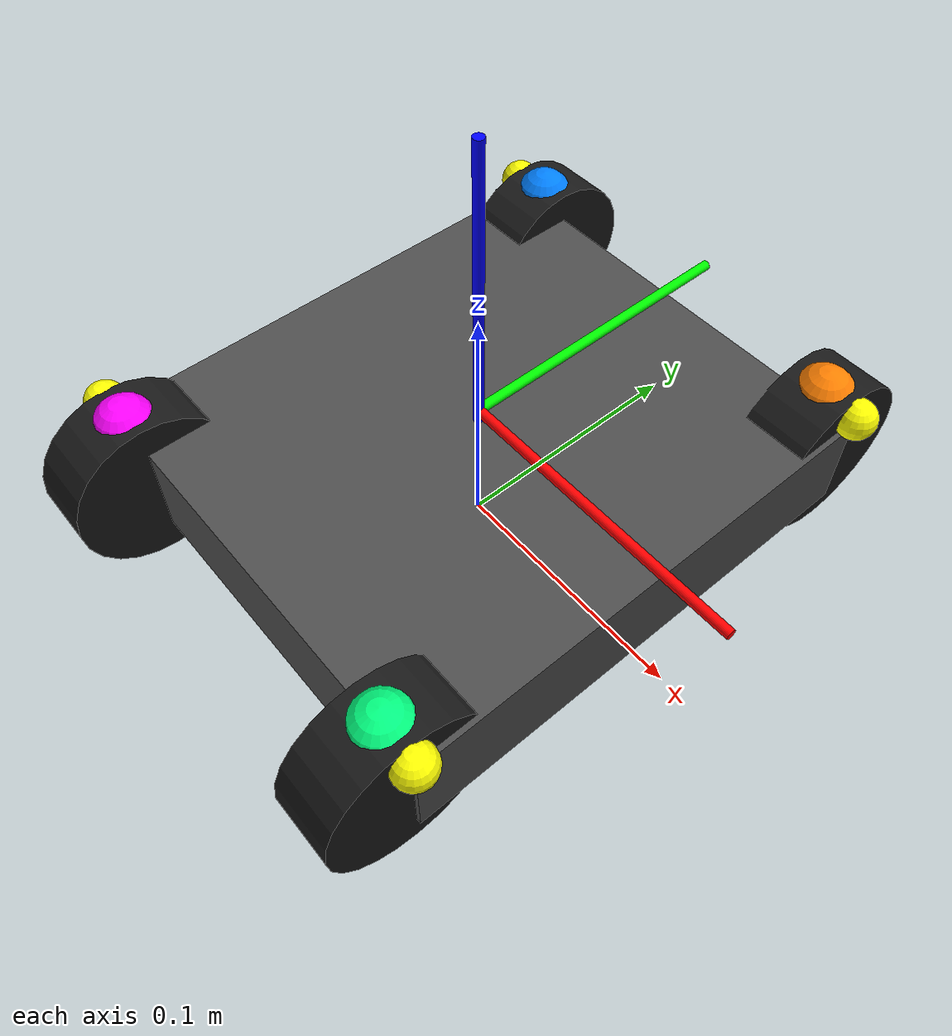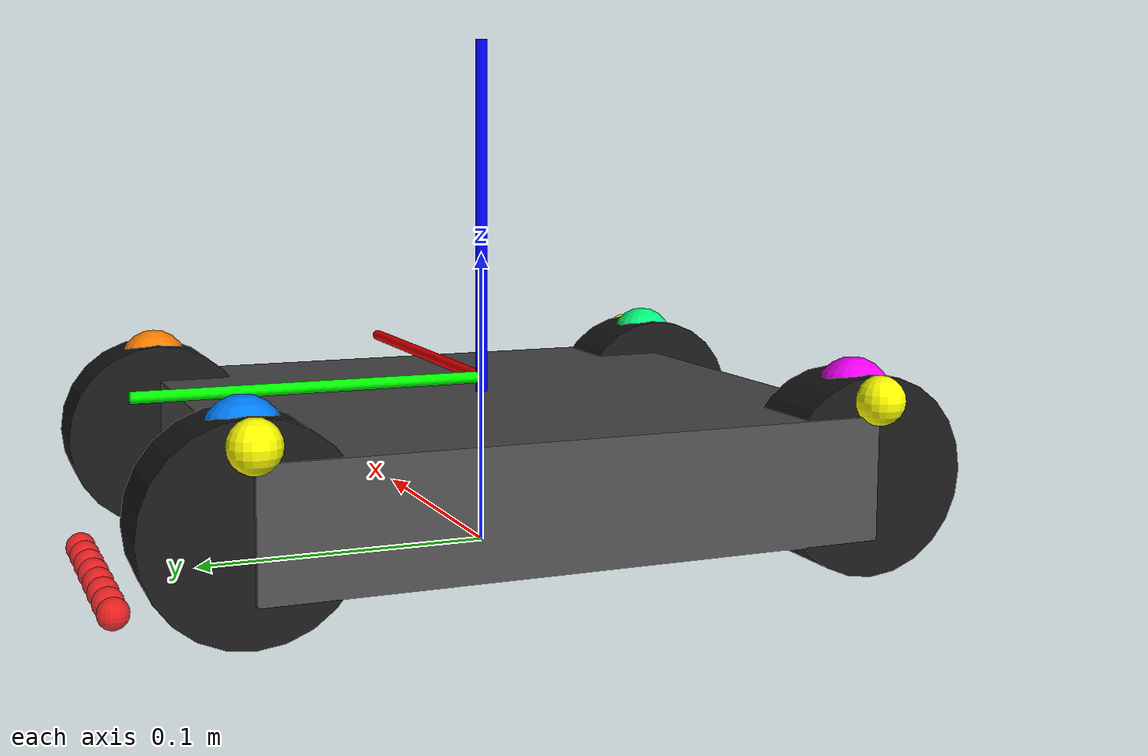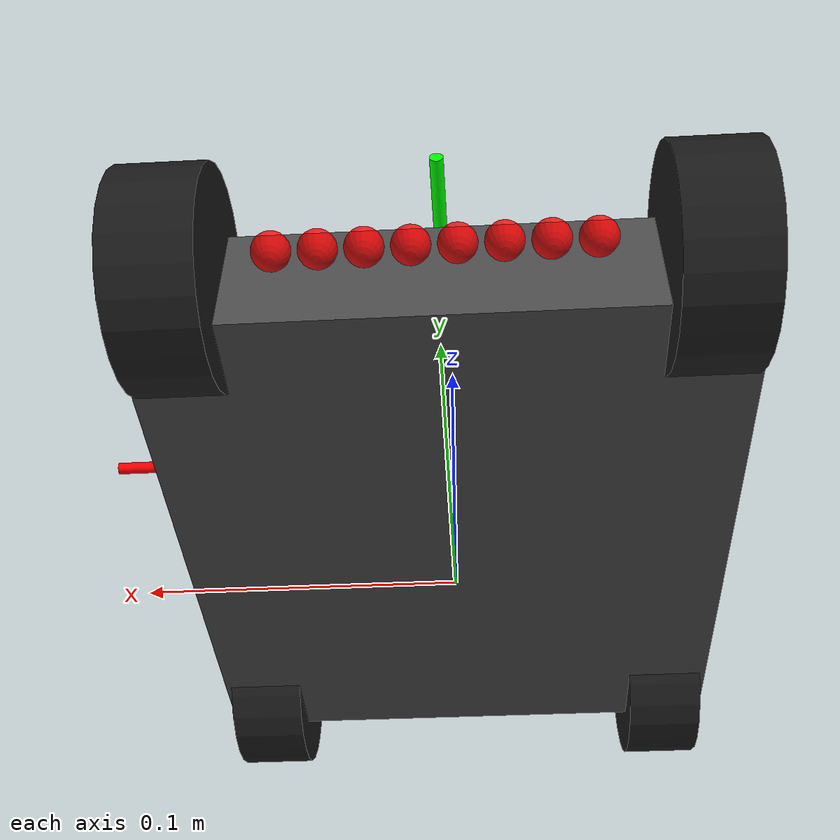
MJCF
<mujoco model="differential_drive_robot">
  <!--
  Differential drive robot with 4 wheels
  Coordinate system: Z-up right-hand (MuJoCo standard)
  Robot heading: +Y direction (user's forward direction maps to +Y in ground plane)
  -->

  <worldbody>
    <!-- Chassis: position at z=0.0325 so chassis center is at wheel radius height -->
    <body name="chassis" pos="0 0 0.0325">
      <!-- Free joint - REQUIRED for robot to move -->
      <freejoint name="root"/>

      <!-- Main chassis box: 200mm x 180mm x 40mm, mass 380g -->
      <geom name="chassis_box" type="box" size="0.090 0.100 0.020"
            mass="0.380" rgba="0.3 0.3 0.3 1"/>

      <!-- Inertial properties -->
      <inertial pos="0 0 0" mass="0.380"
                diaginertia="8e-4 1.2e-3 1.5e-3"/>

      <!-- IR sensor sites: 8 channels, mounted at FRONT of robot -->
      <!-- User coordinates (mm): x=lateral, y=forward (132.1mm), relative to chassis center -->
      <!-- Robot frame: +Y is forward (vehicle heading direction) -->
      <!-- Conversion: user_x -> robot_x (lateral), user_y -> robot_y (forward) -->
      <site name="ir0" pos=" 0.0056944 0.1321 -0.0325" size="0.005" rgba="1 0 0 0.8"/>
      <site name="ir1" pos=" 0.0170831 0.1321 -0.0325" size="0.005" rgba="1 0 0 0.8"/>
      <site name="ir2" pos=" 0.0284719 0.1321 -0.0325" size="0.005" rgba="1 0 0 0.8"/>
      <site name="ir3" pos=" 0.0398606 0.1321 -0.0325" size="0.005" rgba="1 0 0 0.8"/>
      <site name="ir4" pos="-0.0056944 0.1321 -0.0325" size="0.005" rgba="1 0 0 0.8"/>
      <site name="ir5" pos="-0.0170831 0.1321 -0.0325" size="0.005" rgba="1 0 0 0.8"/>
      <site name="ir6" pos="-0.0284719 0.1321 -0.0325" size="0.005" rgba="1 0 0 0.8"/>
      <site name="ir7" pos="-0.0398606 0.1321 -0.0325" size="0.005" rgba="1 0 0 0.8"/>

      <!-- IMU site: at chassis center -->
      <site name="imu_site" pos="0 0 0" size="0.005" rgba="0 0 1 0.5"/>

      <!-- Chassis coordinate frame visualization - on top of chassis -->
      <!-- Chassis is 40mm tall (±20mm), so top surface is at z=0.020 -->
      <site name="chassis_x_axis" type="cylinder" size="0.002 0.06" pos="0.06 0 0.025" euler="0 90 0" rgba="1 0 0 0.9"/>
      <site name="chassis_y_axis" type="cylinder" size="0.002 0.06" pos="0 0.06 0.025" euler="90 0 0" rgba="0 1 0 0.9"/>
      <site name="chassis_z_axis" type="cylinder" size="0.002 0.06" pos="0 0 0.08" euler="0 0 0" rgba="0 0 1 0.9"/>

      <!-- Motor number labels near each wheel on chassis top surface -->
      <!-- M1 = wheel_lf (X=+0.075, Y=+0.100) -->
      <site name="label_m1" type="sphere" pos="0.075 0.100 0.025" size="0.012" rgba="1 0.5 0 1"/>
      <!-- M2 = wheel_lr (X=+0.075, Y=-0.100) -->
      <site name="label_m2" type="sphere" pos="0.075 -0.100 0.025" size="0.012" rgba="0 1 0.5 1"/>
      <!-- M3 = wheel_rf (X=-0.075, Y=+0.100) -->
      <site name="label_m3" type="sphere" pos="-0.075 0.100 0.025" size="0.012" rgba="0 0.5 1 1"/>
      <!-- M4 = wheel_rr (X=-0.075, Y=-0.100) -->
      <site name="label_m4" type="sphere" pos="-0.075 -0.100 0.025" size="0.012" rgba="1 0 1 1"/>

      <!-- Left front wheel: X=+0.075 (right side), Y=+0.100 (front), Z=0 -->
      <!-- Wheel: diameter=65mm (radius=0.0325m), width=26mm (half-width=0.013m) -->
      <!-- Wheel axis parallel to X axis, rotates around X to drive forward (Y direction) -->
      <!-- Left side wheels rotate in opposite direction, so axis is reversed -->
      <body name="wheel_lf" pos="0.075 0.100 0">
        <joint name="jwheel_lf" type="hinge" axis="-1 0 0" damping="0.1"/>
        <geom name="wheel_lf" type="cylinder" size="0.0325 0.013"
              euler="0 90 0" mass="0.030" friction="1.5 0.005 0.0001"
              rgba="0.1 0.1 0.1 1"/>
        <inertial pos="0 0 0" mass="0.030" diaginertia="1.7e-5 3.3e-5 1.7e-5"/>
        <!-- Yellow marker on outer side of wheel -->
        <site name="marker_lf" pos="0.015 0 0.025" size="0.008" rgba="1 1 0 1"/>
      </body>

      <!-- Left rear wheel: X=+0.075 (right side), Y=-0.100 (rear), Z=0 -->
      <body name="wheel_lr" pos="0.075 -0.100 0">
        <joint name="jwheel_lr" type="hinge" axis="-1 0 0" damping="0.1"/>
        <geom name="wheel_lr" type="cylinder" size="0.0325 0.013"
              euler="0 90 0" mass="0.030" friction="1.5 0.005 0.0001"
              rgba="0.1 0.1 0.1 1"/>
        <inertial pos="0 0 0" mass="0.030" diaginertia="1.7e-5 3.3e-5 1.7e-5"/>
        <site name="marker_lr" pos="0.015 0 0.025" size="0.008" rgba="1 1 0 1"/>
      </body>

      <!-- Right front wheel: X=-0.075 (left side), Y=+0.100 (front), Z=0 -->
      <body name="wheel_rf" pos="-0.075 0.100 0">
        <joint name="jwheel_rf" type="hinge" axis="1 0 0" damping="0.1"/>
        <geom name="wheel_rf" type="cylinder" size="0.0325 0.013"
              euler="0 90 0" mass="0.030" friction="1.5 0.005 0.0001"
              rgba="0.1 0.1 0.1 1"/>
        <inertial pos="0 0 0" mass="0.030" diaginertia="1.7e-5 3.3e-5 1.7e-5"/>
        <site name="marker_rf" pos="-0.015 0 0.025" size="0.008" rgba="1 1 0 1"/>
      </body>

      <!-- Right rear wheel: X=-0.075 (left side), Y=-0.100 (rear), Z=0 -->
      <body name="wheel_rr" pos="-0.075 -0.100 0">
        <joint name="jwheel_rr" type="hinge" axis="1 0 0" damping="0.1"/>
        <geom name="wheel_rr" type="cylinder" size="0.0325 0.013"
              euler="0 90 0" mass="0.030" friction="1.5 0.005 0.0001"
              rgba="0.1 0.1 0.1 1"/>
        <inertial pos="0 0 0" mass="0.030" diaginertia="1.7e-5 3.3e-5 1.7e-5"/>
        <site name="marker_rr" pos="-0.015 0 0.025" size="0.008" rgba="1 1 0 1"/>
      </body>
    </body>
  </worldbody>

  <!-- Actuators: velocity control with reduced gain -->
  <actuator>
    <velocity name="act_lf" joint="jwheel_lf" kv="1" gear="1"/>
    <velocity name="act_lr" joint="jwheel_lr" kv="1" gear="1"/>
    <velocity name="act_rf" joint="jwheel_rf" kv="1" gear="1"/>
    <velocity name="act_rr" joint="jwheel_rr" kv="1" gear="1"/>
  </actuator>

  <!-- Sensors -->
  <sensor>
    <!-- Encoder: joint position for each wheel -->
    <jointpos name="enc_lf" joint="jwheel_lf"/>
    <jointpos name="enc_lr" joint="jwheel_lr"/>
    <jointpos name="enc_rf" joint="jwheel_rf"/>
    <jointpos name="enc_rr" joint="jwheel_rr"/>

    <!-- IMU: linear and angular velocity in chassis frame -->
    <framelinvel  name="imu_linvel"  objtype="site" objname="imu_site"/>
    <frameangvel  name="imu_angvel"  objtype="site" objname="imu_site"/>

    <!-- Debug sensors: chassis pose -->
    <framepos     name="chassis_pos" objtype="body" objname="chassis"/>
    <framequat    name="chassis_quat" objtype="body" objname="chassis"/>
  </sensor>
</mujoco>
